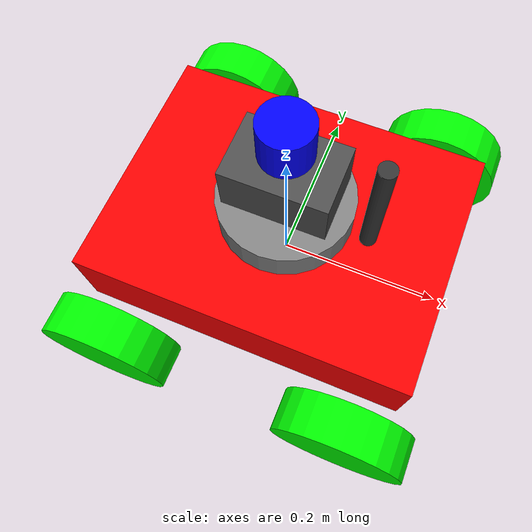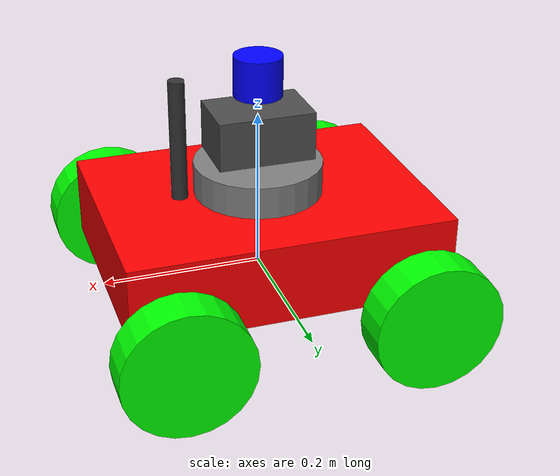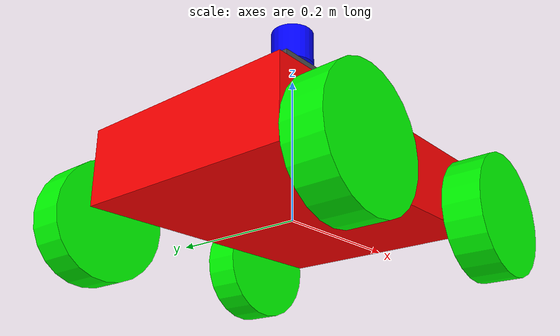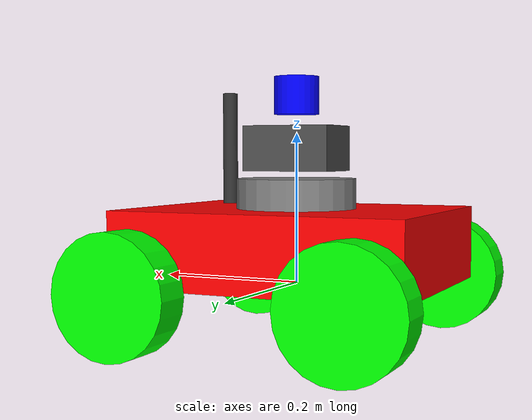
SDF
<?xml version="1.0" ?>
<sdf version="1.9">
    <model name="my_robot">
        <!-- 底盘 -->
        <link name="chassis">
            <pose>0 0 0.05 0 0 0</pose>
            <inertial>
                <mass>5.0</mass>
                <inertia>
                    <ixx>0.083</ixx>
                    <ixy>0</ixy>
                    <ixz>0</ixz>
                    <iyy>0.083</iyy>
                    <iyz>0</iyz>
                    <izz>0.083</izz>
                </inertia>
            </inertial>
            <collision name="collision">
                <geometry>
                    <box>
                        <size>0.4 0.3 0.1</size>
                    </box>
                </geometry>
            </collision>
            <visual name="visual">
                <geometry>
                    <box>
                        <size>0.4 0.3 0.1</size>
                    </box>
                </geometry>
                <material>
                    <diffuse>1 0 0 1</diffuse>
                </material>
            </visual>
        </link>

        <!-- 云台底座 -->
        <link name="turret_base">
            <pose>0 0 0.12 0 0 0</pose>
            <inertial>
                <mass>0.5</mass>
                <inertia>
                    <ixx>0.01</ixx>
                    <ixy>0</ixy>
                    <ixz>0</ixz>
                    <iyy>0.01</iyy>
                    <iyz>0</iyz>
                    <izz>0.01</izz>
                </inertia>
            </inertial>
            <collision name="collision">
                <geometry>
                    <cylinder>
                        <radius>0.08</radius>
                        <length>0.04</length>
                    </cylinder>
                </geometry>
            </collision>
            <visual name="visual">
                <geometry>
                    <cylinder>
                        <radius>0.08</radius>
                        <length>0.04</length>
                    </cylinder>
                </geometry>
                <material>
                    <diffuse>0.5 0.5 0.5 1</diffuse>
                </material>
            </visual>
        </link>

        <!-- 云台炮塔 -->
        <link name="turret">
            <pose>0 0 0.18 0 0 0</pose>
            <inertial>
                <mass>0.3</mass>
                <inertia>
                    <ixx>0.005</ixx>
                    <ixy>0</ixy>
                    <ixz>0</ixz>
                    <iyy>0.005</iyy>
                    <iyz>0</iyz>
                    <izz>0.005</izz>
                </inertia>
            </inertial>
            <collision name="collision">
                <geometry>
                    <box>
                        <size>0.12 0.08 0.06</size>
                    </box>
                </geometry>
            </collision>
            <visual name="visual">
                <geometry>
                    <box>
                        <size>0.12 0.08 0.06</size>
                    </box>
                </geometry>
                <material>
                    <diffuse>0.3 0.3 0.3 1</diffuse>
                </material>
            </visual>
        </link>

        <!-- 炮管 -->
        <link name="barrel">
            <pose>0.1 0 0.18 0 0 0</pose>
            <inertial>
                <mass>0.2</mass>
                <inertia>
                    <ixx>0.001</ixx>
                    <ixy>0</ixy>
                    <ixz>0</ixz>
                    <iyy>0.001</iyy>
                    <iyz>0</iyz>
                    <izz>0.001</izz>
                </inertia>
            </inertial>
            <collision name="collision">
                <geometry>
                    <cylinder>
                        <radius>0.01</radius>
                        <length>0.15</length>
                    </cylinder>
                </geometry>
            </collision>
            <visual name="visual">
                <geometry>
                    <cylinder>
                        <radius>0.01</radius>
                        <length>0.15</length>
                    </cylinder>
                </geometry>
                <material>
                    <diffuse>0.2 0.2 0.2 1</diffuse>
                </material>
            </visual>
        </link>

        <!-- 前左轮 -->
        <link name="front_left_wheel">
            <pose>0.15 0.2 0 1.5707 0 0</pose>
            <inertial>
                <mass>0.5</mass>
                <inertia>
                    <ixx>0.001</ixx>
                    <ixy>0</ixy>
                    <ixz>0</ixz>
                    <iyy>0.001</iyy>
                    <iyz>0</iyz>
                    <izz>0.001</izz>
                </inertia>
            </inertial>
            <collision name="collision">
                <geometry>
                    <cylinder>
                        <radius>0.08</radius>
                        <length>0.05</length>
                    </cylinder>
                </geometry>
                <surface>
                    <friction>
                        <ode>
                            <mu>0.8</mu>
                            <mu2>0.8</mu2>
                        </ode>
                    </friction>
                </surface>
            </collision>
            <visual name="visual">
                <geometry>
                    <cylinder>
                        <radius>0.08</radius>
                        <length>0.05</length>
                    </cylinder>
                </geometry>
                <material>
                    <diffuse>0 1 0 1</diffuse>
                </material>
            </visual>
        </link>

        <!-- 前右轮 -->
        <link name="front_right_wheel">
            <pose>0.15 -0.2 0 1.5707 0 0</pose>
            <inertial>
                <mass>0.5</mass>
                <inertia>
                    <ixx>0.001</ixx>
                    <ixy>0</ixy>
                    <ixz>0</ixz>
                    <iyy>0.001</iyy>
                    <iyz>0</iyz>
                    <izz>0.001</izz>
                </inertia>
            </inertial>
            <collision name="collision">
                <geometry>
                    <cylinder>
                        <radius>0.08</radius>
                        <length>0.05</length>
                    </cylinder>
                </geometry>
                <surface>
                    <friction>
                        <ode>
                            <mu>0.8</mu>
                            <mu2>0.8</mu2>
                        </ode>
                    </friction>
                </surface>
            </collision>
            <visual name="visual">
                <geometry>
                    <cylinder>
                        <radius>0.08</radius>
                        <length>0.05</length>
                    </cylinder>
                </geometry>
                <material>
                    <diffuse>0 1 0 1</diffuse>
                </material>
            </visual>
        </link>

        <!-- 后左轮 -->
        <link name="back_left_wheel">
            <pose>-0.15 0.2 0 1.5707 0 0</pose>
            <inertial>
                <mass>0.5</mass>
                <inertia>
                    <ixx>0.001</ixx>
                    <ixy>0</ixy>
                    <ixz>0</ixz>
                    <iyy>0.001</iyy>
                    <iyz>0</iyz>
                    <izz>0.001</izz>
                </inertia>
            </inertial>
            <collision name="collision">
                <geometry>
                    <cylinder>
                        <radius>0.08</radius>
                        <length>0.05</length>
                    </cylinder>
                </geometry>
                <surface>
                    <friction>
                        <ode>
                            <mu>0.8</mu>
                            <mu2>0.8</mu2>
                        </ode>
                    </friction>
                </surface>
            </collision>
            <visual name="visual">
                <geometry>
                    <cylinder>
                        <radius>0.08</radius>
                        <length>0.05</length>
                    </cylinder>
                </geometry>
                <material>
                    <diffuse>0 1 0 1</diffuse>
                </material>
            </visual>
        </link>

        <!-- 后右轮 -->
        <link name="back_right_wheel">
            <pose>-0.15 -0.2 0 1.5707 0 0</pose>
            <inertial>
                <mass>0.5</mass>
                <inertia>
                    <ixx>0.001</ixx>
                    <ixy>0</ixy>
                    <ixz>0</ixz>
                    <iyy>0.001</iyy>
                    <iyz>0</iyz>
                    <izz>0.001</izz>
                </inertia>
            </inertial>
            <collision name="collision">
                <geometry>
                    <cylinder>
                        <radius>0.08</radius>
                        <length>0.05</length>
                    </cylinder>
                </geometry>
                <surface>
                    <friction>
                        <ode>
                            <mu>0.8</mu>
                            <mu2>0.8</mu2>
                        </ode>
                    </friction>
                </surface>
            </collision>
            <visual name="visual">
                <geometry>
                    <cylinder>
                        <radius>0.08</radius>
                        <length>0.05</length>
                    </cylinder>
                </geometry>
                <material>
                    <diffuse>0 1 0 1</diffuse>
                </material>
            </visual>
        </link>

        <!-- 激光雷达 -->
        <link name="lidar">
            <pose>0 0 0.25 0 0 0</pose>
            <inertial>
                <mass>0.1</mass>
                <inertia>
                    <ixx>0.001</ixx>
                    <ixy>0</ixy>
                    <ixz>0</ixz>
                    <iyy>0.001</iyy>
                    <iyz>0</iyz>
                    <izz>0.001</izz>
                </inertia>
            </inertial>
            <visual name="visual">
                <geometry>
                    <cylinder>
                        <radius>0.03</radius>
                        <length>0.05</length>
                    </cylinder>
                </geometry>
                <material>
                    <diffuse>0 0 1 1</diffuse>
                </material>
            </visual>
            <sensor name="lidar_sensor" type="lidar">
                <pose>0 0 0 0 0 0</pose>
                <always_on>true</always_on>
                <update_rate>10</update_rate>
                <ray>
                    <scan>
                        <horizontal>
                            <samples>360</samples>
                            <resolution>1</resolution>
                            <min_angle>-3.14159</min_angle>
                            <max_angle>3.14159</max_angle>
                        </horizontal>
                    </scan>
                    <range>
                        <min>0.1</min>
                        <max>10.0</max>
                        <resolution>0.01</resolution>
                    </range>
                </ray>
                <topic>/lidar</topic>
            </sensor>
        </link>

        <!-- 关节 -->
        <!-- 轮子关节 -->
        <joint name="front_left_wheel_joint" type="revolute">
            <parent>chassis</parent>
            <child>front_left_wheel</child>
            <axis>
                <xyz>0 1 0</xyz>
                <limit>
                    <lower>-1e16</lower>
                    <upper>1e16</upper>
                    <effort>1e6</effort>
                    <velocity>100</velocity>
                </limit>
            </axis>
        </joint>

        <joint name="front_right_wheel_joint" type="revolute">
            <parent>chassis</parent>
            <child>front_right_wheel</child>
            <axis>
                <xyz>0 1 0</xyz>
                <limit>
                    <lower>-1e16</lower>
                    <upper>1e16</upper>
                    <effort>1e6</effort>
                    <velocity>100</velocity>
                </limit>
            </axis>
        </joint>

        <joint name="back_left_wheel_joint" type="revolute">
            <parent>chassis</parent>
            <child>back_left_wheel</child>
            <axis>
                <xyz>0 1 0</xyz>
                <limit>
                    <lower>-1e16</lower>
                    <upper>1e16</upper>
                    <effort>1e6</effort>
                    <velocity>100</velocity>
                </limit>
            </axis>
        </joint>

        <joint name="back_right_wheel_joint" type="revolute">
            <parent>chassis</parent>
            <child>back_right_wheel</child>
            <axis>
                <xyz>0 1 0</xyz>
                <limit>
                    <lower>-1e16</lower>
                    <upper>1e16</upper>
                    <effort>1e6</effort>
                    <velocity>100</velocity>
                </limit>
            </axis>
        </joint>

        <!-- 云台关节 -->
        <joint name="turret_base_joint" type="fixed">
            <parent>chassis</parent>
            <child>turret_base</child>
        </joint>

        <joint name="turret_joint" type="revolute">
            <parent>turret_base</parent>
            <child>turret</child>
            <axis>
                <xyz>0 0 1</xyz>
                <limit>
                    <lower>-3.14159</lower>
                    <upper>3.14159</upper>
                    <effort>1e6</effort>
                    <velocity>10</velocity>
                </limit>
            </axis>
        </joint>

        <joint name="barrel_joint" type="revolute">
            <parent>turret</parent>
            <child>barrel</child>
            <axis>
                <xyz>0 1 0</xyz>
                <limit>
                    <lower>-0.5</lower>
                    <upper>0.5</upper>
                    <effort>1e6</effort>
                    <velocity>5</velocity>
                </limit>
            </axis>
        </joint>

        <joint name="lidar_joint" type="fixed">
            <parent>turret</parent>
            <child>lidar</child>
        </joint>

        <!-- 四个独立轮子速度控制器 -->
        <plugin name="gz::sim::systems::JointController" filename="libgz-sim-joint-controller-system.so">
            <joint_name>front_left_wheel_joint</joint_name>
            <topic>/front_left_wheel/cmd_vel</topic>
            <p_gain>10</p_gain>
            <i_gain>0.1</i_gain>
            <d_gain>0.01</d_gain>
        </plugin>

        <plugin name="gz::sim::systems::JointController" filename="libgz-sim-joint-controller-system.so">
            <joint_name>front_right_wheel_joint</joint_name>
            <topic>/front_right_wheel/cmd_vel</topic>
            <p_gain>10</p_gain>
            <i_gain>0.1</i_gain>
            <d_gain>0.01</d_gain>
        </plugin>

        <plugin name="gz::sim::systems::JointController" filename="libgz-sim-joint-controller-system.so">
            <joint_name>back_left_wheel_joint</joint_name>
            <topic>/back_left_wheel/cmd_vel</topic>
            <p_gain>10</p_gain>
            <i_gain>0.1</i_gain>
            <d_gain>0.01</d_gain>
        </plugin>

        <plugin name="gz::sim::systems::JointController" filename="libgz-sim-joint-controller-system.so">
            <joint_name>back_right_wheel_joint</joint_name>
            <topic>/back_right_wheel/cmd_vel</topic>
            <p_gain>10</p_gain>
            <i_gain>0.1</i_gain>
            <d_gain>0.01</d_gain>
        </plugin>

        <!-- 云台位置控制器 -->
        <plugin name="gz::sim::systems::JointPositionController" filename="libgz-sim-joint-position-controller-system.so">
            <joint_name>turret_joint</joint_name>
            <topic>/turret/cmd_pos</topic>
            <p_gain>100</p_gain>
            <i_gain>10</i_gain>
            <d_gain>1</d_gain>
        </plugin>

        <plugin name="gz::sim::systems::JointPositionController" filename="libgz-sim-joint-position-controller-system.so">
            <joint_name>barrel_joint</joint_name>
            <topic>/barrel/cmd_pos</topic>
            <p_gain>100</p_gain>
            <i_gain>10</i_gain>
            <d_gain>1</d_gain>
        </plugin>
    </model>
</sdf>
